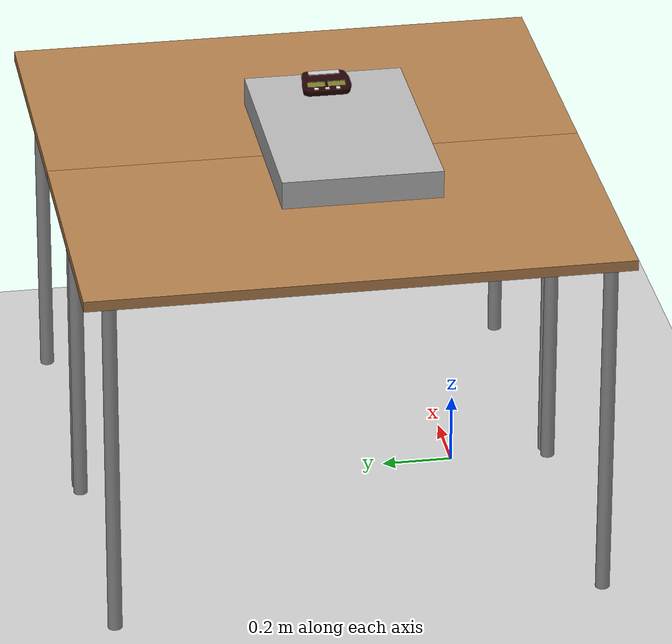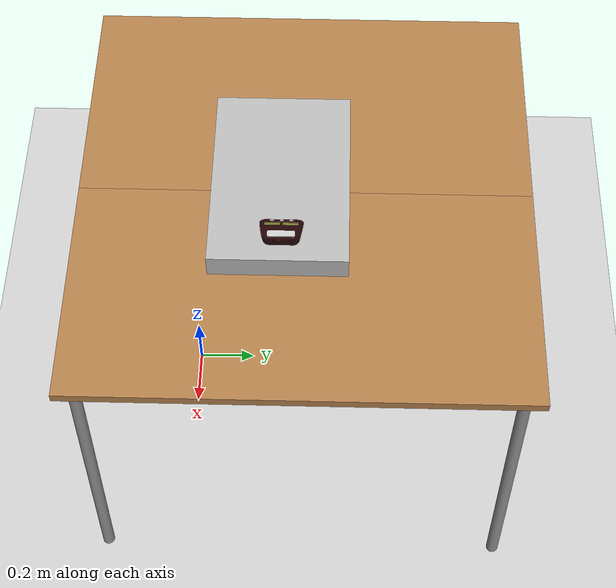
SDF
<sdf version="1.6">
 <world name="default">
  <light name="sun" type="directional">
   <pose>0 0 10 0 -0 0</pose>
   <diffuse>0.8 0.8 0.8 1</diffuse>
   <specular>0.2 0.2 0.2 1</specular>
   <attenuation>
    <range>1000</range>
    <constant>0.9</constant>
    <linear>0.01</linear>
    <quadratic>0.001</quadratic>
   </attenuation>
   <direction>-0.5 0.1 -0.9</direction>
  </light>
  <model name="ground_plane">
   <static>1</static>
   <link name="link">
    <collision name="collision">
     <geometry><plane><normal>0 0 1</normal><size>100 100</size></plane></geometry>
     <surface>
      <contact><collide_bitmask>65535</collide_bitmask></contact>
      <friction><ode><mu>100</mu><mu2>50</mu2></ode></friction>
     </surface>
    </collision>
    <visual name="visual">
     <cast_shadows>0</cast_shadows>
     <geometry><plane><normal>0 0 1</normal><size>100 100</size></plane></geometry>
     <material>
      <script><uri>file://media/materials/scripts/gazebo.material</uri><name>Gazebo/Grey</name></script>
     </material>
    </visual>
   </link>
  </model>
  <gravity>0 0 -9.8</gravity>
  <magnetic_field>6e-06 2.3e-05 -4.2e-05</magnetic_field>
  <atmosphere type="adiabatic"/>
  <physics name="default_physics" default="0" type="ode">
   <max_step_size>0.001</max_step_size>
   <real_time_factor>1</real_time_factor>
   <real_time_update_rate>1000</real_time_update_rate>
  </physics>
  <scene><ambient>0.4 0.4 0.4 1</ambient><background>0.7 0.7 0.7 1</background><shadows>0</shadows></scene>
  <audio><device>default</device></audio>
  <spherical_coordinates>
   <surface_model>EARTH_WGS84</surface_model>
   <latitude_deg>0</latitude_deg>
   <longitude_deg>0</longitude_deg>
   <elevation>0</elevation>
   <heading_deg>0</heading_deg>
  </spherical_coordinates>
  <model name="table">
   <static>1</static>
   <link name="link">
    <collision name="surface">
     <pose>0 0 1 0 -0 0</pose>
     <geometry><box><size>1.5 0.8 0.03</size></box></geometry>
     <surface><friction><ode><mu>0.6</mu><mu2>0.6</mu2></ode></friction></surface>
    </collision>
    <visual name="visual1">
     <pose>0 0 1 0 -0 0</pose>
     <geometry><box><size>1.5 0.8 0.03</size></box></geometry>
     <material>
      <script><uri>file://media/materials/scripts/gazebo.material</uri><name>Gazebo/Wood</name></script>
     </material>
    </visual>
    <collision name="front_left_leg">
     <pose>0.68 0.38 0.5 0 -0 0</pose>
     <geometry><cylinder><radius>0.02</radius><length>1</length></cylinder></geometry>
    </collision>
    <visual name="front_left_leg">
     <pose>0.68 0.38 0.5 0 -0 0</pose>
     <geometry><cylinder><radius>0.02</radius><length>1</length></cylinder></geometry>
     <material>
      <script><uri>file://media/materials/scripts/gazebo.material</uri><name>Gazebo/Grey</name></script>
     </material>
    </visual>
    <collision name="front_right_leg">
     <pose>0.68 -0.38 0.5 0 -0 0</pose>
     <geometry><cylinder><radius>0.02</radius><length>1</length></cylinder></geometry>
    </collision>
    <visual name="front_right_leg">
     <pose>0.68 -0.38 0.5 0 -0 0</pose>
     <geometry><cylinder><radius>0.02</radius><length>1</length></cylinder></geometry>
     <material>
      <script><uri>file://media/materials/scripts/gazebo.material</uri><name>Gazebo/Grey</name></script>
     </material>
    </visual>
    <collision name="back_right_leg">
     <pose>-0.68 -0.38 0.5 0 -0 0</pose>
     <geometry><cylinder><radius>0.02</radius><length>1</length></cylinder></geometry>
    </collision>
    <visual name="back_right_leg">
     <pose>-0.68 -0.38 0.5 0 -0 0</pose>
     <geometry><cylinder><radius>0.02</radius><length>1</length></cylinder></geometry>
     <material>
      <script><uri>file://media/materials/scripts/gazebo.material</uri><name>Gazebo/Grey</name></script>
     </material>
    </visual>
    <collision name="back_left_leg">
     <pose>-0.68 0.38 0.5 0 -0 0</pose>
     <geometry><cylinder><radius>0.02</radius><length>1</length></cylinder></geometry>
    </collision>
    <visual name="back_left_leg">
     <pose>-0.68 0.38 0.5 0 -0 0</pose>
     <geometry><cylinder><radius>0.02</radius><length>1</length></cylinder></geometry>
     <material>
      <script><uri>file://media/materials/scripts/gazebo.material</uri><name>Gazebo/Grey</name></script>
     </material>
    </visual>
   </link>
   <pose>-0.4 0.4 0 0 -0 1.5708</pose>
  </model>
  <model name="table_clone">
   <static>1</static>
   <link name="link">
    <collision name="surface">
     <pose>0 0 1 0 -0 0</pose>
     <geometry><box><size>1.5 0.8 0.03</size></box></geometry>
     <surface><friction><ode><mu>0.6</mu><mu2>0.6</mu2></ode></friction></surface>
    </collision>
    <visual name="visual1">
     <pose>0 0 1 0 -0 0</pose>
     <geometry><box><size>1.5 0.8 0.03</size></box></geometry>
     <material>
      <script><uri>file://media/materials/scripts/gazebo.material</uri><name>Gazebo/Wood</name></script>
     </material>
    </visual>
    <collision name="front_left_leg">
     <pose>0.68 0.38 0.5 0 -0 0</pose>
     <geometry><cylinder><radius>0.02</radius><length>1</length></cylinder></geometry>
    </collision>
    <visual name="front_left_leg">
     <pose>0.68 0.38 0.5 0 -0 0</pose>
     <geometry><cylinder><radius>0.02</radius><length>1</length></cylinder></geometry>
     <material>
      <script><uri>file://media/materials/scripts/gazebo.material</uri><name>Gazebo/Grey</name></script>
     </material>
    </visual>
    <collision name="front_right_leg">
     <pose>0.68 -0.38 0.5 0 -0 0</pose>
     <geometry><cylinder><radius>0.02</radius><length>1</length></cylinder></geometry>
    </collision>
    <visual name="front_right_leg">
     <pose>0.68 -0.38 0.5 0 -0 0</pose>
     <geometry><cylinder><radius>0.02</radius><length>1</length></cylinder></geometry>
     <material>
      <script><uri>file://media/materials/scripts/gazebo.material</uri><name>Gazebo/Grey</name></script>
     </material>
    </visual>
    <collision name="back_right_leg">
     <pose>-0.68 -0.38 0.5 0 -0 0</pose>
     <geometry><cylinder><radius>0.02</radius><length>1</length></cylinder></geometry>
    </collision>
    <visual name="back_right_leg">
     <pose>-0.68 -0.38 0.5 0 -0 0</pose>
     <geometry><cylinder><radius>0.02</radius><length>1</length></cylinder></geometry>
     <material>
      <script><uri>file://media/materials/scripts/gazebo.material</uri><name>Gazebo/Grey</name></script>
     </material>
    </visual>
    <collision name="back_left_leg">
     <pose>-0.68 0.38 0.5 0 -0 0</pose>
     <geometry><cylinder><radius>0.02</radius><length>1</length></cylinder></geometry>
    </collision>
    <visual name="back_left_leg">
     <pose>-0.68 0.38 0.5 0 -0 0</pose>
     <geometry><cylinder><radius>0.02</radius><length>1</length></cylinder></geometry>
     <material>
      <script><uri>file://media/materials/scripts/gazebo.material</uri><name>Gazebo/Grey</name></script>
     </material>
    </visual>
   </link>
   <pose>0.4 0.4 0 0 -0 1.5708</pose>
  </model>
  <model name="chessboard_base">
   <pose>0 0.32 1.005 0 -0 0</pose>
   <static>1</static>
   <link name="link_0">
    <inertial>
     <mass>1</mass>
     <inertia>
      <ixx>0.166667</ixx>
      <ixy>0</ixy>
      <ixz>0</ixz>
      <iyy>0.166667</iyy>
      <iyz>0</iyz>
      <izz>0.166667</izz>
     </inertia>
    </inertial>
    <visual name="visual">
     <pose>0 0 0.045 0 -0 0</pose>
     <geometry><box><size>0.68 0.45 0.09</size></box></geometry>
    </visual>
    <collision name="collision">
     <pose>0 0 0.045 0 -0 0</pose>
     <geometry><box><size>0.68 0.45 0.09</size></box></geometry>
     <surface>
      <friction><ode><mu>1</mu><mu2>1</mu2></ode></friction>
      <contact><ode><kp>1e+07</kp><kd>1</kd><max_vel>0.001</max_vel><min_depth>0.1</min_depth></ode></contact>
     </surface>
    </collision>
   </link>
  </model>
  <model name="chessclock">
   <static>1</static>
   <link name="link_0">
    <inertial>
     <mass>1</mass>
     <inertia>
      <ixx>0.166667</ixx>
      <ixy>0</ixy>
      <ixz>0</ixz>
      <iyy>0.166667</iyy>
      <iyz>0</iyz>
      <izz>0.166667</izz>
     </inertia>
    </inertial>
    <visual name="visual">
     <geometry><mesh><uri>model://chessclock/meshes/clock.dae</uri><scale>1 1 1</scale></mesh></geometry>
    </visual>
    <collision name="collision">
     <pose>0 0 0.0175 0 -0 0</pose>
     <geometry><box><size>0.1 0.14 0.035</size></box></geometry>
     <surface>
      <friction><ode><mu>1</mu><mu2>1</mu2></ode></friction>
      <contact><ode><kp>1e+07</kp><kd>1</kd><max_vel>0.001</max_vel><min_depth>0.1</min_depth></ode></contact>
     </surface>
    </collision>
   </link>
   <pose>0.235 0.33 1.095 0 -0 3.1415</pose>
  </model>
  <plugin name="ros_link_attacher_plugin" filename="libgazebo_ros_link_attacher.so"/>
 </world>
</sdf>
